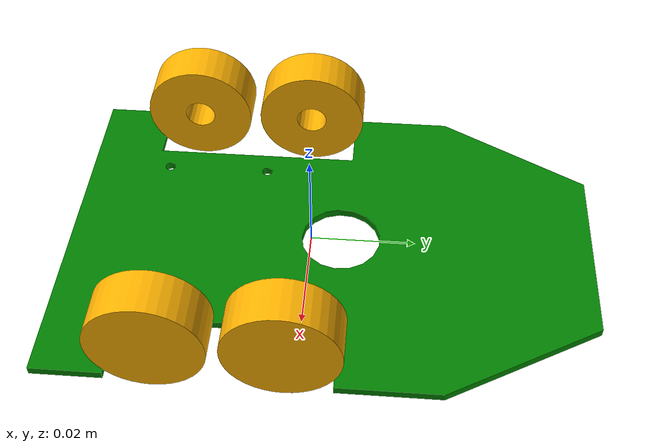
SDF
<?xml version="1.0" ?>
<sdf version="1.8">
	<model name="robot" canonical_link="base_link">
		<plugin filename="libignition-gazebo-imu-system.so"
				name="ignition::gazebo::systems::Imu">
		</plugin>
		<plugin filename="libignition-gazebo-forcetorque-system.so"
				name="ignition::gazebo::systems::ForceTorque">
		</plugin>
		<plugin filename="libignition-gazebo-joint-state-publisher-system"
  				name="gz::sim::systems::JointStatePublisher">
			<topic>joint_states</topic>
			<joint_name>RLW_joint</joint_name>
			<joint_name>RRW_joint</joint_name>
		</plugin>
		<plugin filename="libignition-gazebo-sensors-system.so"
				name="ignition::gazebo::systems::Sensors">
			<render_engine>ogre2</render_engine>
		</plugin>
		<plugin filename="libignition-gazebo-diff-drive-system.so"
				name="ignition::gazebo::systems::DiffDrive">
			<left_joint>FLW_joint</left_joint>
			<left_joint>RLW_joint</left_joint>
			<right_joint>FRW_joint</right_joint>
			<right_joint>RRW_joint</right_joint>
			<wheel_separation>0.05</wheel_separation>
			<wheel_radius>0.021</wheel_radius>
			<topic>cmd_vel</topic>
			<odom_publish_frequency>100</odom_publish_frequency>
			<min_linear_velocity>-10.0</min_linear_velocity>
			<max_linear_velocity>10.0</max_linear_velocity>
			<min_angular_velocity>-250.0</min_angular_velocity>
			<max_angular_velocity>250.0</max_angular_velocity>
			<min_linear_acceleration>-50.0</min_linear_acceleration>
			<max_linear_acceleration>50.0</max_linear_acceleration>
			<min_angular_acceleration>-3000.0</min_angular_acceleration>
			<max_angular_acceleration>3000.0</max_angular_acceleration>
		</plugin>
		<frame name="lidar0_frame" attached_to="base_link">
			<pose relative_to="base_link">-0.0285 0.02 0.005 0 0 1.57079632679489</pose>
		</frame>
		<frame name="lidar1_frame" attached_to="base_link">
			<pose relative_to="base_link">-0.017 0.052 0.005 0 0 2.35619449019234</pose>
		</frame>
		<frame name="lidar2_frame" attached_to="base_link">
			<pose relative_to="base_link">0.017 0.052 0.005 0 0 0.78539816339744</pose>
		</frame>
		<frame name="lidar3_frame" attached_to="base_link">
			<pose relative_to="base_link">0.0285 0.02 0.005 0 0 1.57079632679489</pose>
		</frame>
		<link name="base_link">
			<inertial>
				<mass>0.0825016710008052</mass>
				<inertia>
					<ixx>7.14350881728348E-05</ixx>
					<ixy>0</ixy>
					<ixz>0</ixz>
					<iyy>2.27281998078348E-05</iyy>
					<iyz>0</iyz>
					<izz>9.41280872677092E-05</izz>
				</inertia>
			</inertial>
			<visual name="base_vis">
				<pose relative_to="base_link">0 0.07 0.017 0 0 0</pose>
				<geometry>
					<mesh>
						<uri>file://gazebo/meshes/base_link.stl</uri>
					</mesh>
				</geometry>
				<material>
					<ambient>0.0 0.5 0.0 1</ambient>
					<diffuse>0.0 0.5 0.0 1</diffuse>
					<specular>0.0 0.5 0.0 1</specular>
				</material>
			</visual>
			<collision name="base_coll">
				<pose relative_to="base_link">0 0.07 0.017 0 0 0</pose>
				<geometry>
					<mesh>
						<uri>file://gazebo/meshes/base_link.stl</uri>
					</mesh>
				</geometry>
			</collision>
			<sensor name="imu_sensor" type="imu">
				<always_on>1</always_on>
				<update_rate>100</update_rate>
				<visualize>true</visualize>
				<topic>imu</topic>
			</sensor>
			<sensor name="gpu_lidar0" type="gpu_lidar">"
				<pose relative_to="lidar0_frame">0 0 0 0 0 0</pose>
				<topic>lidar0</topic>
				<update_rate>100</update_rate>
				<ray>
					<scan>
						<horizontal>
							<samples>1</samples>
							<resolution>1</resolution>
							<min_angle>0</min_angle>
							<max_angle>0</max_angle>
						</horizontal>
						<vertical>
							<samples>1</samples>
							<resolution>1</resolution>
							<min_angle>0</min_angle>
							<max_angle>0</max_angle>
						</vertical>
					</scan>
					<range>
						<min>0.0001</min>
						<max>0.3</max>
						<resolution>0.0001</resolution>
					</range>
				</ray>
				<always_on>1</always_on>
				<visualize>true</visualize>
			</sensor>
			<sensor name="gpu_lidar1" type="gpu_lidar">"
				<pose relative_to="lidar1_frame">0 0 0 0 0 0</pose>
				<topic>lidar1</topic>
				<update_rate>100</update_rate>
				<ray>
					<scan>
						<horizontal>
							<samples>1</samples>
							<resolution>1</resolution>
							<min_angle>0</min_angle>
							<max_angle>0</max_angle>
						</horizontal>
						<vertical>
							<samples>1</samples>
							<resolution>1</resolution>
							<min_angle>0</min_angle>
							<max_angle>0</max_angle>
						</vertical>
					</scan>
					<range>
						<min>0.0001</min>
						<max>0.3</max>
						<resolution>0.0001</resolution>
					</range>
				</ray>
				<always_on>1</always_on>
				<visualize>true</visualize>
			</sensor>
			<sensor name="gpu_lidar2" type="gpu_lidar">"
				<pose relative_to="lidar2_frame">0 0 0 0 0 0</pose>
				<topic>lidar2</topic>
				<update_rate>100</update_rate>
				<ray>
					<scan>
						<horizontal>
							<samples>1</samples>
							<resolution>1</resolution>
							<min_angle>0</min_angle>
							<max_angle>0</max_angle>
						</horizontal>
						<vertical>
							<samples>1</samples>
							<resolution>1</resolution>
							<min_angle>0</min_angle>
							<max_angle>0</max_angle>
						</vertical>
					</scan>
					<range>
						<min>0.0001</min>
						<max>0.3</max>
						<resolution>0.0001</resolution>
					</range>
				</ray>
				<always_on>1</always_on>
				<visualize>true</visualize>
			</sensor>
			<sensor name="gpu_lidar3" type="gpu_lidar">"
				<pose relative_to="lidar3_frame">0 0 0 0 0 0</pose>
				<topic>lidar3</topic>
				<update_rate>100</update_rate>
				<ray>
					<scan>
						<horizontal>
							<samples>1</samples>
							<resolution>1</resolution>
							<min_angle>0</min_angle>
							<max_angle>0</max_angle>
						</horizontal>
						<vertical>
							<samples>1</samples>
							<resolution>1</resolution>
							<min_angle>0</min_angle>
							<max_angle>0</max_angle>
						</vertical>
					</scan>
					<range>
						<min>0.0001</min>
						<max>0.3</max>
						<resolution>0.0001</resolution>
					</range>
				</ray>
				<always_on>1</always_on>
				<visualize>true</visualize>
			</sensor>
		</link>
		<link name="FLW_link">
			<pose relative_to="base_link">-0.02925 -0.002 0.008 0 0 3.14159265359</pose>
			<inertial>
				<mass>0.00135156970824209</mass>
				<inertia>
					<ixx>8.00075362261772E-08</ixx>
					<ixy>0</ixy>
					<ixz>0</ixz>
					<iyy>4.82352157196683E-08</iyy>
					<iyz>0</iyz>
					<izz>4.82352157196683E-08</izz>
				</inertia>
			</inertial>
			<visual name="FLW_vis">
				<pose relative_to="FLW_link">-0.00425 0 0 0 0 3.14159265359</pose>
				<geometry>
					<mesh>
						<uri>file://gazebo/meshes/wheel.stl</uri>
					</mesh>
				</geometry>
				<material>
					<ambient>1.0 0.7 0 1</ambient>
					<diffuse>1.0 0.7 0 1</diffuse>
					<specular>1.0 0.7 0 1</specular>
				</material>
			</visual>
			<collision name="FLW_coll">
				<pose relative_to="FLW_link">-0.00425 0 0 0 0 3.14159265359</pose>
				<geometry>
					<mesh>
						<uri>file://gazebo/meshes/wheel.stl</uri>
					</mesh>
				</geometry>
				<surface>
					<friction>
						<ode>
							<mu>0.95</mu>
							<mu2>0.95</mu2>
						</ode>
						<bullet>
							<friction>0.95</friction>
							<friction2>0.95</friction2>
							<rolling_friction>0.1</rolling_friction>
						</bullet>
					</friction>
				</surface>
			</collision>
		</link>
		<joint name="FLW_joint" type="revolute">
			<pose relative_to="FLW_link">0 0 0 0 0 0</pose>
			<parent>base_link</parent>
			<child>FLW_link</child>
			<axis>
				<xyz>1 0 0</xyz>
				<limit>
					<lower>-1.79769e+308</lower>
					<upper>1.79769e+308</upper>
				</limit>
			</axis>
			<sensor name="FLW_torque" type="force_torque">
				<always_on>1</always_on>
				<update_rate>100</update_rate>
				<visualize>true</visualize>
				<topic>FLW_torque</topic>
				<force_torque>
					<frame>child</frame>
					<measure_direction>parent_to_child</measure_direction>
				</force_torque>
			</sensor>
		</joint>
		<link name="RLW_link">
			<pose relative_to="base_link">-0.02925 -0.025 0.008 0 0 3.14159265359</pose>
			<inertial>
				<mass>0.00135156970824209</mass>
				<inertia>
					<ixx>8.00075362261772E-08</ixx>
					<ixy>0</ixy>
					<ixz>0</ixz>
					<iyy>4.82352157196683E-08</iyy>
					<iyz>0</iyz>
					<izz>4.82352157196683E-08</izz>
				</inertia>
			</inertial>
			<visual name="RLW_vis">
				<pose relative_to="RLW_link">-0.00425 0 0 0 0 3.14159265359</pose>
				<geometry>
					<mesh>
						<uri>file://gazebo/meshes/wheel.stl</uri>
					</mesh>
				</geometry>
				<material>
					<ambient>1.0 0.7 0 1</ambient>
					<diffuse>1.0 0.7 0 1</diffuse>
					<specular>1.0 0.7 0 1</specular>
				</material>
			</visual>
			<collision name="RLW_coll">
				<pose relative_to="RLW_link">-0.00425 0 0 0 0 3.14159265359</pose>
				<geometry>
					<mesh>
						<uri>file://gazebo/meshes/wheel.stl</uri>
					</mesh>
				</geometry>
				<surface>
					<friction>
						<ode>
							<mu>0.95</mu>
							<mu2>0.95</mu2>
						</ode>
						<bullet>
							<friction>0.95</friction>
							<friction2>0.95</friction2>
							<rolling_friction>0.1</rolling_friction>
						</bullet>
					</friction>
				</surface>
			</collision>
		</link>
		<joint name="RLW_joint" type="revolute">
			<pose relative_to="RLW_link">0 0 0 0 0 0</pose>
			<parent>base_link</parent>
			<child>RLW_link</child>
			<axis>
				<xyz>1 0 0</xyz>
				<limit>
					<lower>-1.79769e+308</lower>
					<upper>1.79769e+308</upper>
				</limit>
			</axis>
			<sensor name="RLW_torque" type="force_torque">
				<always_on>1</always_on>
				<update_rate>100</update_rate>
				<visualize>true</visualize>
				<topic>RLW_torque</topic>
				<force_torque>
					<frame>child</frame>
					<measure_direction>parent_to_child</measure_direction>
				</force_torque>
			</sensor>
		</joint>
		<link name="FRW_link">
			<pose relative_to="base_link">0.02925 -0.002 0.008 0 0 3.14159265359</pose>
			<inertial>
				<mass>0.00135156970824209</mass>
				<inertia>
					<ixx>8.00075362261772E-08</ixx>
					<ixy>0</ixy>
					<ixz>0</ixz>
					<iyy>4.82352157196683E-08</iyy>
					<iyz>0</iyz>
					<izz>4.82352157196683E-08</izz>
				</inertia>
			</inertial>
			<visual name="FRW_vis">
				<pose relative_to="FRW_link">0.00425 0 0 0 0 0</pose>
				<geometry>
					<mesh>
						<uri>file://gazebo/meshes/wheel.stl</uri>
					</mesh>
				</geometry>
				<material>
					<ambient>1.0 0.7 0 1</ambient>
					<diffuse>1.0 0.7 0 1</diffuse>
					<specular>1.0 0.7 0 1</specular>
				</material>
			</visual>
			<collision name="FRW_coll">
				<pose relative_to="FRW_link">0.00425 0 0 0 0 0</pose>
				<geometry>
					<mesh>
						<uri>file://gazebo/meshes/wheel.stl</uri>
					</mesh>
				</geometry>
				<surface>
					<friction>
						<ode>
							<mu>0.95</mu>
							<mu2>0.95</mu2>
						</ode>
						<bullet>
							<friction>0.95</friction>
							<friction2>0.95</friction2>
							<rolling_friction>0.1</rolling_friction>
						</bullet>
					</friction>
				</surface>
			</collision>
		</link>
		<joint name="FRW_joint" type="revolute">
			<pose relative_to="FRW_link">0 0 0 0 0 0</pose>
			<parent>base_link</parent>
			<child>FRW_link</child>
			<axis>
				<xyz>1 0 0</xyz>
				<limit>
					<lower>-1.79769e+308</lower>
					<upper>1.79769e+308</upper>
				</limit>
			</axis>
			<sensor name="FRW_torque" type="force_torque">
				<always_on>1</always_on>
				<update_rate>100</update_rate>
				<visualize>true</visualize>
				<topic>FRW_torque</topic>
				<force_torque>
					<frame>child</frame>
					<measure_direction>parent_to_child</measure_direction>
				</force_torque>
			</sensor>
		</joint>
		<link name="RRW_link">
			<pose relative_to="base_link">0.02925 -0.025 0.008 0 0 3.14159265359</pose>
			<inertial>
				<mass>0.00135156970824209</mass>
				<inertia>
					<ixx>8.00075362261772E-08</ixx>
					<ixy>0</ixy>
					<ixz>0</ixz>
					<iyy>4.82352157196683E-08</iyy>
					<iyz>0</iyz>
					<izz>4.82352157196683E-08</izz>
				</inertia>
			</inertial>
			<visual name="RRW_vis">
				<pose relative_to="RRW_link">0.00425 0 0 0 0 0</pose>
				<geometry>
					<mesh>
						<uri>file://gazebo/meshes/wheel.stl</uri>
					</mesh>
				</geometry>
				<material>
					<ambient>1.0 0.7 0 1</ambient>
					<diffuse>1.0 0.7 0 1</diffuse>
					<specular>1.0 0.7 0 1</specular>
				</material>
			</visual>
			<collision name="RRW_coll">
				<pose relative_to="RRW_link">0.00425 0 0 0 0 0</pose>
				<geometry>
					<mesh>
						<uri>file://gazebo/meshes/wheel.stl</uri>
					</mesh>
				</geometry>
				<surface>
					<friction>
						<ode>
							<mu>0.95</mu>
							<mu2>0.95</mu2>
						</ode>
						<bullet>
							<friction>0.95</friction>
							<friction2>0.95</friction2>
							<rolling_friction>0.1</rolling_friction>
						</bullet>
					</friction>
				</surface>
			</collision>
		</link>
		<joint name="RRW_joint" type="revolute">
			<pose relative_to="RRW_link">0 0 0 0 0 0</pose>
			<parent>base_link</parent>
			<child>RRW_link</child>
			<axis>
				<xyz>1 0 0</xyz>
				<limit>
					<lower>-1.79769e+308</lower>
					<upper>1.79769e+308</upper>
				</limit>
			</axis>
			<sensor name="RRW_torque" type="force_torque">
				<always_on>1</always_on>
				<update_rate>100</update_rate>
				<visualize>true</visualize>
				<topic>RRW_torque</topic>
				<force_torque>
					<frame>child</frame>
					<measure_direction>parent_to_child</measure_direction>
				</force_torque>
			</sensor>
		</joint>
	</model>
</sdf>
